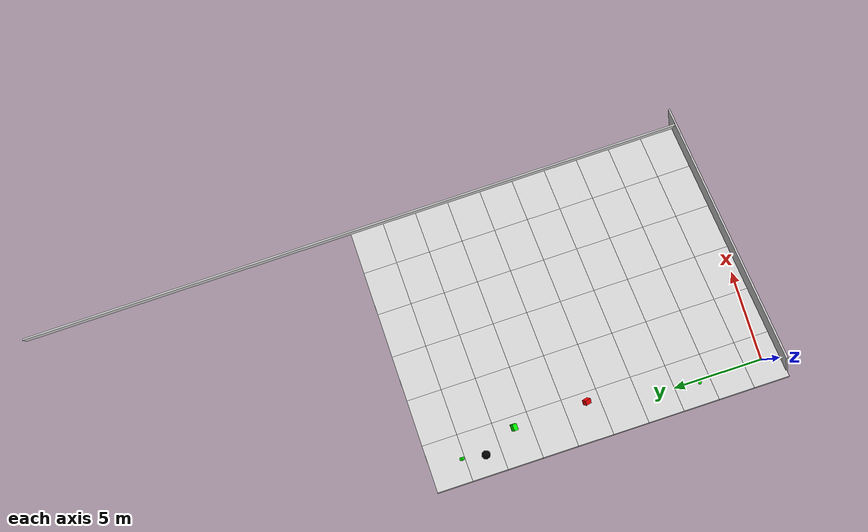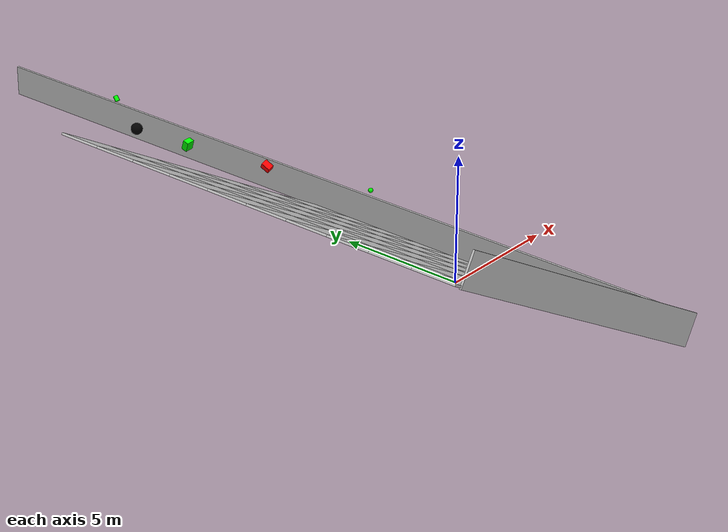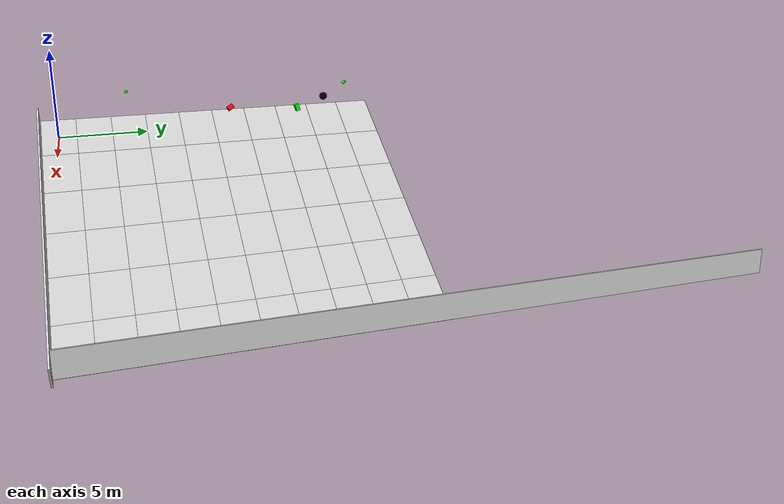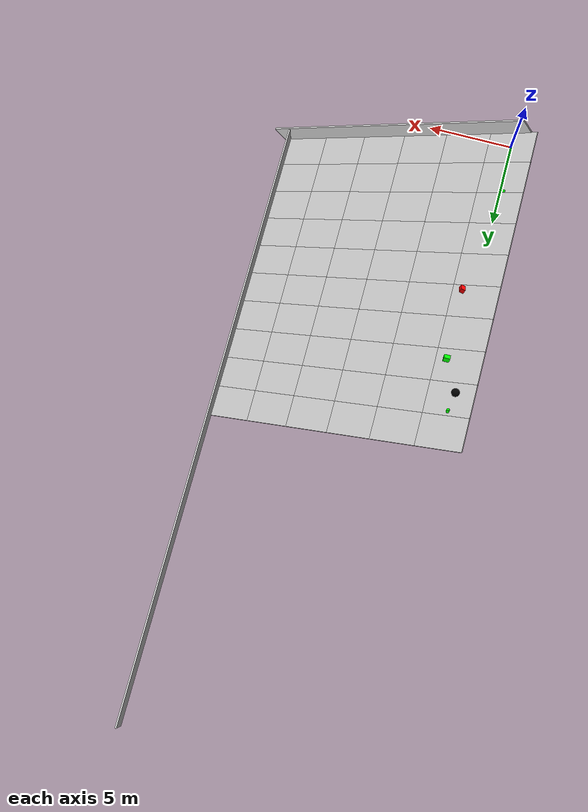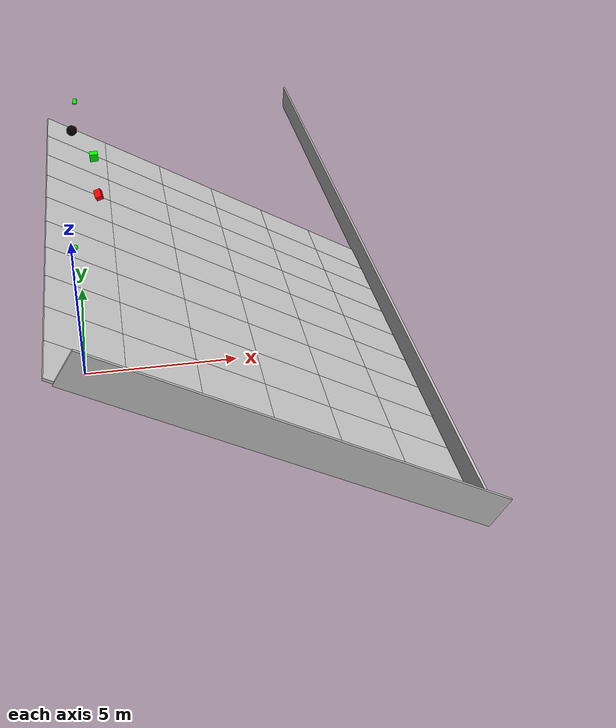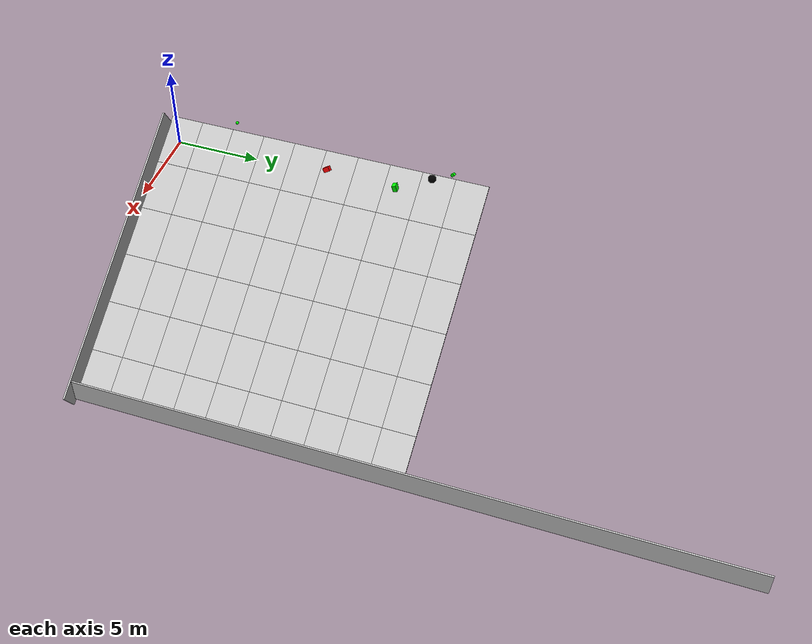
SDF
<sdf version="1.6">
 <world name="default">
  <model name="model_1">
   <pose>-0.038271952556842015
        3.959762532615608
        2.462529946225647
        1.066721489782598
        1.2828383124867102
        2.5433092710002985</pose>
   <link name="link">
    <inertial>
     <mass>0.011222515870999929</mass>
     <inertia>
      <ixx>3.567959466566401e-05</ixx>
      <iyy>3.567959466566401e-05</iyy>
      <izz>3.567959466566401e-05</izz>
      <ixy>0.0</ixy>
      <ixz>0.0</ixz>
      <iyz>0.0</iyz>
     </inertia>
    </inertial>
    <collision name="collision">
     <geometry><sphere><radius>0.08915277099144181</radius></sphere></geometry>
    </collision>
    <visual name="visual">
     <geometry><sphere><radius>0.08915277099144181</radius></sphere></geometry>
     <material>
      <diffuse>0
              1
              0
              1</diffuse>
      <specular>0
              1
              0
              1</specular>
      <ambient>1
              1
              1
              1</ambient>
     </material>
    </visual>
   </link>
  </model>
  <model name="model_2">
   <pose>-0.12676382181791312
        15.906205672275762
        1.4659229326791146
        2.706385247141538
        1.0482228673604856
        1.304410164367507</pose>
   <link name="link">
    <inertial>
     <mass>0.122455597367965</mass>
     <inertia>
      <ixx>0.0027519343341353376</ixx>
      <iyy>0.0027519343341353376</iyy>
      <izz>0.0027519343341353376</izz>
      <ixy>0.0</ixy>
      <ixz>0.0</ixz>
      <iyz>0.0</iyz>
     </inertia>
    </inertial>
    <collision name="collision">
     <geometry><sphere><radius>0.23702803548759238</radius></sphere></geometry>
    </collision>
    <visual name="visual">
     <geometry><sphere><radius>0.23702803548759238</radius></sphere></geometry>
     <material>
      <diffuse>0
              0
              0
              1</diffuse>
      <specular>0
              0
              0
              1</specular>
      <ambient>0
              0
              1
              1</ambient>
     </material>
    </visual>
   </link>
  </model>
  <model name="model_5">
   <pose>0.1006548400403221
        17.21287808213079
        2.3141409388962617
        3.0284407605036097
        0.7237282130935071
        1.246580234347236</pose>
   <link name="link">
    <inertial>
     <mass>0.019406978406939474</mass>
     <inertia>
      <ixx>0.00011904788369320333</ixx>
      <iyy>0.00011904788369320333</iyy>
      <izz>8.277062895178454e-05</izz>
      <ixy>0.0</ixy>
      <ixz>0.0</ixz>
      <iyz>0.0</iyz>
     </inertia>
    </inertial>
    <collision name="collision">
     <geometry>
      <cylinder><radius>0.09235792437736104</radius><length>0.21913792172734095</length></cylinder>
     </geometry>
    </collision>
    <visual name="visual">
     <geometry>
      <cylinder><radius>0.09235792437736104</radius><length>0.21913792172734095</length></cylinder>
     </geometry>
     <material>
      <diffuse>0
              1
              0
              1</diffuse>
      <specular>1
              1
              1
              1</specular>
      <ambient>0
              1
              0
              1</ambient>
     </material>
    </visual>
   </link>
  </model>
  <model name="model_8">
   <pose>0.7767954464235158
        13.991533947986316
        1.029149445295319
        1.620926287593392
        2.842830134354316
        1.616057043043007</pose>
   <link name="link">
    <inertial>
     <mass>0.08261027453007969</mass>
     <inertia>
      <ixx>0.002014914596640963</ixx>
      <iyy>0.0013454234872722533</iyy>
      <izz>0.0014988091572397978</izz>
      <ixy>0.0</ixy>
      <ixz>0.0</ixz>
      <iyz>0.0</iyz>
     </inertia>
    </inertial>
    <collision name="collision">
     <geometry>
      <box><size>0.24542519845996835
           0.39684261621582184
           0.36769987911048974</size></box>
     </geometry>
    </collision>
    <visual name="visual">
     <geometry>
      <box><size>0.24542519845996835
           0.39684261621582184
           0.36769987911048974</size></box>
     </geometry>
     <material>
      <diffuse>0
              1
              0
              1</diffuse>
      <specular>0
              0
              0
              1</specular>
      <ambient>1
              0
              1
              1</ambient>
     </material>
    </visual>
   </link>
  </model>
  <model name="model_10">
   <pose>0.8658046214067792
        9.868357803020617
        1.3044535573637759
        0.9412412023747528
        0.9010714836349217
        0.9969421995681935</pose>
   <link name="link">
    <inertial>
     <mass>0.007915386322146037</mass>
     <inertia>
      <ixx>0.00013824236259011782</ixx>
      <iyy>9.739401543267154e-05</iyy>
      <izz>0.00013895046738993761</izz>
      <ixy>0.0</ixy>
      <ixz>0.0</ixz>
      <iyz>0.0</iyz>
     </inertia>
    </inertial>
    <collision name="collision">
     <geometry>
      <box><size>0.27269599772218023
           0.3691755912948558
           0.2707205122544274</size></box>
     </geometry>
    </collision>
    <visual name="visual">
     <geometry>
      <box><size>0.27269599772218023
           0.3691755912948558
           0.2707205122544274</size></box>
     </geometry>
     <material>
      <diffuse>1
              0
              0
              1</diffuse>
      <specular>0
              0
              1
              1</specular>
      <ambient>0
              0
              1
              1</ambient>
     </material>
    </visual>
   </link>
  </model>
  <model name="block_0_0">
   <static>true</static>
   <pose>0.0 0.0 -0.0 0 0.5235987755982988 0</pose>
   <link name="link">
    <collision name="collision">
     <geometry><box><size>3.0
           2.0
           0.1</size></box></geometry>
    </collision>
    <visual name="visual">
     <geometry><box><size>3.0
           2.0
           0.1</size></box></geometry>
     <material>
      <ambient>0.8 0.8 0.8 1</ambient>
      <diffuse>0.8 0.8 0.8 1</diffuse>
      <specular>0.8 0.8 0.8 1</specular>
     </material>
    </visual>
   </link>
  </model>
  <model name="block_0_1">
   <static>true</static>
   <pose>0.0 2.0 -0.0 0 0.5235987755982988 0</pose>
   <link name="link">
    <collision name="collision">
     <geometry><box><size>3.0
           2.0
           0.1</size></box></geometry>
    </collision>
    <visual name="visual">
     <geometry><box><size>3.0
           2.0
           0.1</size></box></geometry>
     <material>
      <ambient>0.8 0.8 0.8 1</ambient>
      <diffuse>0.8 0.8 0.8 1</diffuse>
      <specular>0.8 0.8 0.8 1</specular>
     </material>
    </visual>
   </link>
  </model>
  <model name="block_0_2">
   <static>true</static>
   <pose>0.0 4.0 -0.0 0 0.5235987755982988 0</pose>
   <link name="link">
    <collision name="collision">
     <geometry><box><size>3.0
           2.0
           0.1</size></box></geometry>
    </collision>
    <visual name="visual">
     <geometry><box><size>3.0
           2.0
           0.1</size></box></geometry>
     <material>
      <ambient>0.8 0.8 0.8 1</ambient>
      <diffuse>0.8 0.8 0.8 1</diffuse>
      <specular>0.8 0.8 0.8 1</specular>
     </material>
    </visual>
   </link>
  </model>
  <model name="block_0_3">
   <static>true</static>
   <pose>0.0 6.0 -0.0 0 0.5235987755982988 0</pose>
   <link name="link">
    <collision name="collision">
     <geometry><box><size>3.0
           2.0
           0.1</size></box></geometry>
    </collision>
    <visual name="visual">
     <geometry><box><size>3.0
           2.0
           0.1</size></box></geometry>
     <material>
      <ambient>0.8 0.8 0.8 1</ambient>
      <diffuse>0.8 0.8 0.8 1</diffuse>
      <specular>0.8 0.8 0.8 1</specular>
     </material>
    </visual>
   </link>
  </model>
  <model name="block_0_4">
   <static>true</static>
   <pose>0.0 8.0 -0.0 0 0.5235987755982988 0</pose>
   <link name="link">
    <collision name="collision">
     <geometry><box><size>3.0
           2.0
           0.1</size></box></geometry>
    </collision>
    <visual name="visual">
     <geometry><box><size>3.0
           2.0
           0.1</size></box></geometry>
     <material>
      <ambient>0.8 0.8 0.8 1</ambient>
      <diffuse>0.8 0.8 0.8 1</diffuse>
      <specular>0.8 0.8 0.8 1</specular>
     </material>
    </visual>
   </link>
  </model>
  <model name="block_0_5">
   <static>true</static>
   <pose>0.0 10.0 -0.0 0 0.5235987755982988 0</pose>
   <link name="link">
    <collision name="collision">
     <geometry><box><size>3.0
           2.0
           0.1</size></box></geometry>
    </collision>
    <visual name="visual">
     <geometry><box><size>3.0
           2.0
           0.1</size></box></geometry>
     <material>
      <ambient>0.8 0.8 0.8 1</ambient>
      <diffuse>0.8 0.8 0.8 1</diffuse>
      <specular>0.8 0.8 0.8 1</specular>
     </material>
    </visual>
   </link>
  </model>
  <model name="block_0_6">
   <static>true</static>
   <pose>0.0 12.0 -0.0 0 0.5235987755982988 0</pose>
   <link name="link">
    <collision name="collision">
     <geometry><box><size>3.0
           2.0
           0.1</size></box></geometry>
    </collision>
    <visual name="visual">
     <geometry><box><size>3.0
           2.0
           0.1</size></box></geometry>
     <material>
      <ambient>0.8 0.8 0.8 1</ambient>
      <diffuse>0.8 0.8 0.8 1</diffuse>
      <specular>0.8 0.8 0.8 1</specular>
     </material>
    </visual>
   </link>
  </model>
  <model name="block_0_7">
   <static>true</static>
   <pose>0.0 14.0 -0.0 0 0.5235987755982988 0</pose>
   <link name="link">
    <collision name="collision">
     <geometry><box><size>3.0
           2.0
           0.1</size></box></geometry>
    </collision>
    <visual name="visual">
     <geometry><box><size>3.0
           2.0
           0.1</size></box></geometry>
     <material>
      <ambient>0.8 0.8 0.8 1</ambient>
      <diffuse>0.8 0.8 0.8 1</diffuse>
      <specular>0.8 0.8 0.8 1</specular>
     </material>
    </visual>
   </link>
  </model>
  <model name="block_0_8">
   <static>true</static>
   <pose>0.0 16.0 -0.0 0 0.5235987755982988 0</pose>
   <link name="link">
    <collision name="collision">
     <geometry><box><size>3.0
           2.0
           0.1</size></box></geometry>
    </collision>
    <visual name="visual">
     <geometry><box><size>3.0
           2.0
           0.1</size></box></geometry>
     <material>
      <ambient>0.8 0.8 0.8 1</ambient>
      <diffuse>0.8 0.8 0.8 1</diffuse>
      <specular>0.8 0.8 0.8 1</specular>
     </material>
    </visual>
   </link>
  </model>
  <model name="block_0_9">
   <static>true</static>
   <pose>0.0 18.0 -0.0 0 0.5235987755982988 0</pose>
   <link name="link">
    <collision name="collision">
     <geometry><box><size>3.0
           2.0
           0.1</size></box></geometry>
    </collision>
    <visual name="visual">
     <geometry><box><size>3.0
           2.0
           0.1</size></box></geometry>
     <material>
      <ambient>0.8 0.8 0.8 1</ambient>
      <diffuse>0.8 0.8 0.8 1</diffuse>
      <specular>0.8 0.8 0.8 1</specular>
     </material>
    </visual>
   </link>
  </model>
  <model name="block_1_0">
   <static>true</static>
   <pose>2.598076211353316 0.0 -1.4999999999999998 0 0.5235987755982988 0</pose>
   <link name="link">
    <collision name="collision">
     <geometry><box><size>3.0
           2.0
           0.1</size></box></geometry>
    </collision>
    <visual name="visual">
     <geometry><box><size>3.0
           2.0
           0.1</size></box></geometry>
     <material>
      <ambient>0.8 0.8 0.8 1</ambient>
      <diffuse>0.8 0.8 0.8 1</diffuse>
      <specular>0.8 0.8 0.8 1</specular>
     </material>
    </visual>
   </link>
  </model>
  <model name="block_1_1">
   <static>true</static>
   <pose>2.598076211353316 2.0 -1.4999999999999998 0 0.5235987755982988 0</pose>
   <link name="link">
    <collision name="collision">
     <geometry><box><size>3.0
           2.0
           0.1</size></box></geometry>
    </collision>
    <visual name="visual">
     <geometry><box><size>3.0
           2.0
           0.1</size></box></geometry>
     <material>
      <ambient>0.8 0.8 0.8 1</ambient>
      <diffuse>0.8 0.8 0.8 1</diffuse>
      <specular>0.8 0.8 0.8 1</specular>
     </material>
    </visual>
   </link>
  </model>
  <model name="block_1_2">
   <static>true</static>
   <pose>2.598076211353316 4.0 -1.4999999999999998 0 0.5235987755982988 0</pose>
   <link name="link">
    <collision name="collision">
     <geometry><box><size>3.0
           2.0
           0.1</size></box></geometry>
    </collision>
    <visual name="visual">
     <geometry><box><size>3.0
           2.0
           0.1</size></box></geometry>
     <material>
      <ambient>0.8 0.8 0.8 1</ambient>
      <diffuse>0.8 0.8 0.8 1</diffuse>
      <specular>0.8 0.8 0.8 1</specular>
     </material>
    </visual>
   </link>
  </model>
  <model name="block_1_3">
   <static>true</static>
   <pose>2.598076211353316 6.0 -1.4999999999999998 0 0.5235987755982988 0</pose>
   <link name="link">
    <collision name="collision">
     <geometry><box><size>3.0
           2.0
           0.1</size></box></geometry>
    </collision>
    <visual name="visual">
     <geometry><box><size>3.0
           2.0
           0.1</size></box></geometry>
     <material>
      <ambient>0.8 0.8 0.8 1</ambient>
      <diffuse>0.8 0.8 0.8 1</diffuse>
      <specular>0.8 0.8 0.8 1</specular>
     </material>
    </visual>
   </link>
  </model>
  <model name="block_1_4">
   <static>true</static>
   <pose>2.598076211353316 8.0 -1.4999999999999998 0 0.5235987755982988 0</pose>
   <link name="link">
    <collision name="collision">
     <geometry><box><size>3.0
           2.0
           0.1</size></box></geometry>
    </collision>
    <visual name="visual">
     <geometry><box><size>3.0
           2.0
           0.1</size></box></geometry>
     <material>
      <ambient>0.8 0.8 0.8 1</ambient>
      <diffuse>0.8 0.8 0.8 1</diffuse>
      <specular>0.8 0.8 0.8 1</specular>
     </material>
    </visual>
   </link>
  </model>
  <model name="block_1_5">
   <static>true</static>
   <pose>2.598076211353316 10.0 -1.4999999999999998 0 0.5235987755982988 0</pose>
   <link name="link">
    <collision name="collision">
     <geometry><box><size>3.0
           2.0
           0.1</size></box></geometry>
    </collision>
    <visual name="visual">
     <geometry><box><size>3.0
           2.0
           0.1</size></box></geometry>
     <material>
      <ambient>0.8 0.8 0.8 1</ambient>
      <diffuse>0.8 0.8 0.8 1</diffuse>
      <specular>0.8 0.8 0.8 1</specular>
     </material>
    </visual>
   </link>
  </model>
  <model name="block_1_6">
   <static>true</static>
   <pose>2.598076211353316 12.0 -1.4999999999999998 0 0.5235987755982988 0</pose>
   <link name="link">
    <collision name="collision">
     <geometry><box><size>3.0
           2.0
           0.1</size></box></geometry>
    </collision>
    <visual name="visual">
     <geometry><box><size>3.0
           2.0
           0.1</size></box></geometry>
     <material>
      <ambient>0.8 0.8 0.8 1</ambient>
      <diffuse>0.8 0.8 0.8 1</diffuse>
      <specular>0.8 0.8 0.8 1</specular>
     </material>
    </visual>
   </link>
  </model>
  <model name="block_1_7">
   <static>true</static>
   <pose>2.598076211353316 14.0 -1.4999999999999998 0 0.5235987755982988 0</pose>
   <link name="link">
    <collision name="collision">
     <geometry><box><size>3.0
           2.0
           0.1</size></box></geometry>
    </collision>
    <visual name="visual">
     <geometry><box><size>3.0
           2.0
           0.1</size></box></geometry>
     <material>
      <ambient>0.8 0.8 0.8 1</ambient>
      <diffuse>0.8 0.8 0.8 1</diffuse>
      <specular>0.8 0.8 0.8 1</specular>
     </material>
    </visual>
   </link>
  </model>
  <model name="block_1_8">
   <static>true</static>
   <pose>2.598076211353316 16.0 -1.4999999999999998 0 0.5235987755982988 0</pose>
   <link name="link">
    <collision name="collision">
     <geometry><box><size>3.0
           2.0
           0.1</size></box></geometry>
    </collision>
    <visual name="visual">
     <geometry><box><size>3.0
           2.0
           0.1</size></box></geometry>
     <material>
      <ambient>0.8 0.8 0.8 1</ambient>
      <diffuse>0.8 0.8 0.8 1</diffuse>
      <specular>0.8 0.8 0.8 1</specular>
     </material>
    </visual>
   </link>
  </model>
  <model name="block_1_9">
   <static>true</static>
   <pose>2.598076211353316 18.0 -1.4999999999999998 0 0.5235987755982988 0</pose>
   <link name="link">
    <collision name="collision">
     <geometry><box><size>3.0
           2.0
           0.1</size></box></geometry>
    </collision>
    <visual name="visual">
     <geometry><box><size>3.0
           2.0
           0.1</size></box></geometry>
     <material>
      <ambient>0.8 0.8 0.8 1</ambient>
      <diffuse>0.8 0.8 0.8 1</diffuse>
      <specular>0.8 0.8 0.8 1</specular>
     </material>
    </visual>
   </link>
  </model>
  <model name="block_2_0">
   <static>true</static>
   <pose>5.196152422706632 0.0 -2.9999999999999996 0 0.5235987755982988 0</pose>
   <link name="link">
    <collision name="collision">
     <geometry><box><size>3.0
           2.0
           0.1</size></box></geometry>
    </collision>
    <visual name="visual">
     <geometry><box><size>3.0
           2.0
           0.1</size></box></geometry>
     <material>
      <ambient>0.8 0.8 0.8 1</ambient>
      <diffuse>0.8 0.8 0.8 1</diffuse>
      <specular>0.8 0.8 0.8 1</specular>
     </material>
    </visual>
   </link>
  </model>
  <model name="block_2_1">
   <static>true</static>
   <pose>5.196152422706632 2.0 -2.9999999999999996 0 0.5235987755982988 0</pose>
   <link name="link">
    <collision name="collision">
     <geometry><box><size>3.0
           2.0
           0.1</size></box></geometry>
    </collision>
    <visual name="visual">
     <geometry><box><size>3.0
           2.0
           0.1</size></box></geometry>
     <material>
      <ambient>0.8 0.8 0.8 1</ambient>
      <diffuse>0.8 0.8 0.8 1</diffuse>
      <specular>0.8 0.8 0.8 1</specular>
     </material>
    </visual>
   </link>
  </model>
  <model name="block_2_2">
   <static>true</static>
   <pose>5.196152422706632 4.0 -2.9999999999999996 0 0.5235987755982988 0</pose>
   <link name="link">
    <collision name="collision">
     <geometry><box><size>3.0
           2.0
           0.1</size></box></geometry>
    </collision>
    <visual name="visual">
     <geometry><box><size>3.0
           2.0
           0.1</size></box></geometry>
     <material>
      <ambient>0.8 0.8 0.8 1</ambient>
      <diffuse>0.8 0.8 0.8 1</diffuse>
      <specular>0.8 0.8 0.8 1</specular>
     </material>
    </visual>
   </link>
  </model>
  <model name="block_2_3">
   <static>true</static>
   <pose>5.196152422706632 6.0 -2.9999999999999996 0 0.5235987755982988 0</pose>
   <link name="link">
    <collision name="collision">
     <geometry><box><size>3.0
           2.0
           0.1</size></box></geometry>
    </collision>
    <visual name="visual">
     <geometry><box><size>3.0
           2.0
           0.1</size></box></geometry>
     <material>
      <ambient>0.8 0.8 0.8 1</ambient>
      <diffuse>0.8 0.8 0.8 1</diffuse>
      <specular>0.8 0.8 0.8 1</specular>
     </material>
    </visual>
   </link>
  </model>
  <model name="block_2_4">
   <static>true</static>
   <pose>5.196152422706632 8.0 -2.9999999999999996 0 0.5235987755982988 0</pose>
   <link name="link">
    <collision name="collision">
     <geometry><box><size>3.0
           2.0
           0.1</size></box></geometry>
    </collision>
    <visual name="visual">
     <geometry><box><size>3.0
           2.0
           0.1</size></box></geometry>
     <material>
      <ambient>0.8 0.8 0.8 1</ambient>
      <diffuse>0.8 0.8 0.8 1</diffuse>
      <specular>0.8 0.8 0.8 1</specular>
     </material>
    </visual>
   </link>
  </model>
  <model name="block_2_5">
   <static>true</static>
   <pose>5.196152422706632 10.0 -2.9999999999999996 0 0.5235987755982988 0</pose>
   <link name="link">
    <collision name="collision">
     <geometry><box><size>3.0
           2.0
           0.1</size></box></geometry>
    </collision>
    <visual name="visual">
     <geometry><box><size>3.0
           2.0
           0.1</size></box></geometry>
     <material>
      <ambient>0.8 0.8 0.8 1</ambient>
      <diffuse>0.8 0.8 0.8 1</diffuse>
      <specular>0.8 0.8 0.8 1</specular>
     </material>
    </visual>
   </link>
  </model>
  <model name="block_2_6">
   <static>true</static>
   <pose>5.196152422706632 12.0 -2.9999999999999996 0 0.5235987755982988 0</pose>
   <link name="link">
    <collision name="collision">
     <geometry><box><size>3.0
           2.0
           0.1</size></box></geometry>
    </collision>
    <visual name="visual">
     <geometry><box><size>3.0
           2.0
           0.1</size></box></geometry>
     <material>
      <ambient>0.8 0.8 0.8 1</ambient>
      <diffuse>0.8 0.8 0.8 1</diffuse>
      <specular>0.8 0.8 0.8 1</specular>
     </material>
    </visual>
   </link>
  </model>
  <model name="block_2_7">
   <static>true</static>
   <pose>5.196152422706632 14.0 -2.9999999999999996 0 0.5235987755982988 0</pose>
   <link name="link">
    <collision name="collision">
     <geometry><box><size>3.0
           2.0
           0.1</size></box></geometry>
    </collision>
    <visual name="visual">
     <geometry><box><size>3.0
           2.0
           0.1</size></box></geometry>
     <material>
      <ambient>0.8 0.8 0.8 1</ambient>
      <diffuse>0.8 0.8 0.8 1</diffuse>
      <specular>0.8 0.8 0.8 1</specular>
     </material>
    </visual>
   </link>
  </model>
  <model name="block_2_8">
   <static>true</static>
   <pose>5.196152422706632 16.0 -2.9999999999999996 0 0.5235987755982988 0</pose>
   <link name="link">
    <collision name="collision">
     <geometry><box><size>3.0
           2.0
           0.1</size></box></geometry>
    </collision>
    <visual name="visual">
     <geometry><box><size>3.0
           2.0
           0.1</size></box></geometry>
     <material>
      <ambient>0.8 0.8 0.8 1</ambient>
      <diffuse>0.8 0.8 0.8 1</diffuse>
      <specular>0.8 0.8 0.8 1</specular>
     </material>
    </visual>
   </link>
  </model>
  <model name="block_2_9">
   <static>true</static>
   <pose>5.196152422706632 18.0 -2.9999999999999996 0 0.5235987755982988 0</pose>
   <link name="link">
    <collision name="collision">
     <geometry><box><size>3.0
           2.0
           0.1</size></box></geometry>
    </collision>
    <visual name="visual">
     <geometry><box><size>3.0
           2.0
           0.1</size></box></geometry>
     <material>
      <ambient>0.8 0.8 0.8 1</ambient>
      <diffuse>0.8 0.8 0.8 1</diffuse>
      <specular>0.8 0.8 0.8 1</specular>
     </material>
    </visual>
   </link>
  </model>
  <model name="block_3_0">
   <static>true</static>
   <pose>7.794228634059948 0.0 -4.499999999999999 0 0.5235987755982988 0</pose>
   <link name="link">
    <collision name="collision">
     <geometry><box><size>3.0
           2.0
           0.1</size></box></geometry>
    </collision>
    <visual name="visual">
     <geometry><box><size>3.0
           2.0
           0.1</size></box></geometry>
     <material>
      <ambient>0.8 0.8 0.8 1</ambient>
      <diffuse>0.8 0.8 0.8 1</diffuse>
      <specular>0.8 0.8 0.8 1</specular>
     </material>
    </visual>
   </link>
  </model>
  <model name="block_3_1">
   <static>true</static>
   <pose>7.794228634059948 2.0 -4.499999999999999 0 0.5235987755982988 0</pose>
   <link name="link">
    <collision name="collision">
     <geometry><box><size>3.0
           2.0
           0.1</size></box></geometry>
    </collision>
    <visual name="visual">
     <geometry><box><size>3.0
           2.0
           0.1</size></box></geometry>
     <material>
      <ambient>0.8 0.8 0.8 1</ambient>
      <diffuse>0.8 0.8 0.8 1</diffuse>
      <specular>0.8 0.8 0.8 1</specular>
     </material>
    </visual>
   </link>
  </model>
  <model name="block_3_2">
   <static>true</static>
   <pose>7.794228634059948 4.0 -4.499999999999999 0 0.5235987755982988 0</pose>
   <link name="link">
    <collision name="collision">
     <geometry><box><size>3.0
           2.0
           0.1</size></box></geometry>
    </collision>
    <visual name="visual">
     <geometry><box><size>3.0
           2.0
           0.1</size></box></geometry>
     <material>
      <ambient>0.8 0.8 0.8 1</ambient>
      <diffuse>0.8 0.8 0.8 1</diffuse>
      <specular>0.8 0.8 0.8 1</specular>
     </material>
    </visual>
   </link>
  </model>
  <model name="block_3_3">
   <static>true</static>
   <pose>7.794228634059948 6.0 -4.499999999999999 0 0.5235987755982988 0</pose>
   <link name="link">
    <collision name="collision">
     <geometry><box><size>3.0
           2.0
           0.1</size></box></geometry>
    </collision>
    <visual name="visual">
     <geometry><box><size>3.0
           2.0
           0.1</size></box></geometry>
     <material>
      <ambient>0.8 0.8 0.8 1</ambient>
      <diffuse>0.8 0.8 0.8 1</diffuse>
      <specular>0.8 0.8 0.8 1</specular>
     </material>
    </visual>
   </link>
  </model>
  <model name="block_3_4">
   <static>true</static>
   <pose>7.794228634059948 8.0 -4.499999999999999 0 0.5235987755982988 0</pose>
   <link name="link">
    <collision name="collision">
     <geometry><box><size>3.0
           2.0
           0.1</size></box></geometry>
    </collision>
    <visual name="visual">
     <geometry><box><size>3.0
           2.0
           0.1</size></box></geometry>
     <material>
      <ambient>0.8 0.8 0.8 1</ambient>
      <diffuse>0.8 0.8 0.8 1</diffuse>
      <specular>0.8 0.8 0.8 1</specular>
     </material>
    </visual>
   </link>
  </model>
  <model name="block_3_5">
   <static>true</static>
   <pose>7.794228634059948 10.0 -4.499999999999999 0 0.5235987755982988 0</pose>
   <link name="link">
    <collision name="collision">
     <geometry><box><size>3.0
           2.0
           0.1</size></box></geometry>
    </collision>
    <visual name="visual">
     <geometry><box><size>3.0
           2.0
           0.1</size></box></geometry>
     <material>
      <ambient>0.8 0.8 0.8 1</ambient>
      <diffuse>0.8 0.8 0.8 1</diffuse>
      <specular>0.8 0.8 0.8 1</specular>
     </material>
    </visual>
   </link>
  </model>
  <model name="block_3_6">
   <static>true</static>
   <pose>7.794228634059948 12.0 -4.499999999999999 0 0.5235987755982988 0</pose>
   <link name="link">
    <collision name="collision">
     <geometry><box><size>3.0
           2.0
           0.1</size></box></geometry>
    </collision>
    <visual name="visual">
     <geometry><box><size>3.0
           2.0
           0.1</size></box></geometry>
     <material>
      <ambient>0.8 0.8 0.8 1</ambient>
      <diffuse>0.8 0.8 0.8 1</diffuse>
      <specular>0.8 0.8 0.8 1</specular>
     </material>
    </visual>
   </link>
  </model>
  <model name="block_3_7">
   <static>true</static>
   <pose>7.794228634059948 14.0 -4.499999999999999 0 0.5235987755982988 0</pose>
   <link name="link">
    <collision name="collision">
     <geometry><box><size>3.0
           2.0
           0.1</size></box></geometry>
    </collision>
    <visual name="visual">
     <geometry><box><size>3.0
           2.0
           0.1</size></box></geometry>
     <material>
      <ambient>0.8 0.8 0.8 1</ambient>
      <diffuse>0.8 0.8 0.8 1</diffuse>
      <specular>0.8 0.8 0.8 1</specular>
     </material>
    </visual>
   </link>
  </model>
  <model name="block_3_8">
   <static>true</static>
   <pose>7.794228634059948 16.0 -4.499999999999999 0 0.5235987755982988 0</pose>
   <link name="link">
    <collision name="collision">
     <geometry><box><size>3.0
           2.0
           0.1</size></box></geometry>
    </collision>
    <visual name="visual">
     <geometry><box><size>3.0
           2.0
           0.1</size></box></geometry>
     <material>
      <ambient>0.8 0.8 0.8 1</ambient>
      <diffuse>0.8 0.8 0.8 1</diffuse>
      <specular>0.8 0.8 0.8 1</specular>
     </material>
    </visual>
   </link>
  </model>
  <model name="block_3_9">
   <static>true</static>
   <pose>7.794228634059948 18.0 -4.499999999999999 0 0.5235987755982988 0</pose>
   <link name="link">
    <collision name="collision">
     <geometry><box><size>3.0
           2.0
           0.1</size></box></geometry>
    </collision>
    <visual name="visual">
     <geometry><box><size>3.0
           2.0
           0.1</size></box></geometry>
     <material>
      <ambient>0.8 0.8 0.8 1</ambient>
      <diffuse>0.8 0.8 0.8 1</diffuse>
      <specular>0.8 0.8 0.8 1</specular>
     </material>
    </visual>
   </link>
  </model>
  <model name="block_4_0">
   <static>true</static>
   <pose>10.392304845413264 0.0 -5.999999999999999 0 0.5235987755982988 0</pose>
   <link name="link">
    <collision name="collision">
     <geometry><box><size>3.0
           2.0
           0.1</size></box></geometry>
    </collision>
    <visual name="visual">
     <geometry><box><size>3.0
           2.0
           0.1</size></box></geometry>
     <material>
      <ambient>0.8 0.8 0.8 1</ambient>
      <diffuse>0.8 0.8 0.8 1</diffuse>
      <specular>0.8 0.8 0.8 1</specular>
     </material>
    </visual>
   </link>
  </model>
  <model name="block_4_1">
   <static>true</static>
   <pose>10.392304845413264 2.0 -5.999999999999999 0 0.5235987755982988 0</pose>
   <link name="link">
    <collision name="collision">
     <geometry><box><size>3.0
           2.0
           0.1</size></box></geometry>
    </collision>
    <visual name="visual">
     <geometry><box><size>3.0
           2.0
           0.1</size></box></geometry>
     <material>
      <ambient>0.8 0.8 0.8 1</ambient>
      <diffuse>0.8 0.8 0.8 1</diffuse>
      <specular>0.8 0.8 0.8 1</specular>
     </material>
    </visual>
   </link>
  </model>
  <model name="block_4_2">
   <static>true</static>
   <pose>10.392304845413264 4.0 -5.999999999999999 0 0.5235987755982988 0</pose>
   <link name="link">
    <collision name="collision">
     <geometry><box><size>3.0
           2.0
           0.1</size></box></geometry>
    </collision>
    <visual name="visual">
     <geometry><box><size>3.0
           2.0
           0.1</size></box></geometry>
     <material>
      <ambient>0.8 0.8 0.8 1</ambient>
      <diffuse>0.8 0.8 0.8 1</diffuse>
      <specular>0.8 0.8 0.8 1</specular>
     </material>
    </visual>
   </link>
  </model>
  <model name="block_4_3">
   <static>true</static>
   <pose>10.392304845413264 6.0 -5.999999999999999 0 0.5235987755982988 0</pose>
   <link name="link">
    <collision name="collision">
     <geometry><box><size>3.0
           2.0
           0.1</size></box></geometry>
    </collision>
    <visual name="visual">
     <geometry><box><size>3.0
           2.0
           0.1</size></box></geometry>
     <material>
      <ambient>0.8 0.8 0.8 1</ambient>
      <diffuse>0.8 0.8 0.8 1</diffuse>
      <specular>0.8 0.8 0.8 1</specular>
     </material>
    </visual>
   </link>
  </model>
  <model name="block_4_4">
   <static>true</static>
   <pose>10.392304845413264 8.0 -5.999999999999999 0 0.5235987755982988 0</pose>
   <link name="link">
    <collision name="collision">
     <geometry><box><size>3.0
           2.0
           0.1</size></box></geometry>
    </collision>
    <visual name="visual">
     <geometry><box><size>3.0
           2.0
           0.1</size></box></geometry>
     <material>
      <ambient>0.8 0.8 0.8 1</ambient>
      <diffuse>0.8 0.8 0.8 1</diffuse>
      <specular>0.8 0.8 0.8 1</specular>
     </material>
    </visual>
   </link>
  </model>
  <model name="block_4_5">
   <static>true</static>
   <pose>10.392304845413264 10.0 -5.999999999999999 0 0.5235987755982988 0</pose>
   <link name="link">
    <collision name="collision">
     <geometry><box><size>3.0
           2.0
           0.1</size></box></geometry>
    </collision>
    <visual name="visual">
     <geometry><box><size>3.0
           2.0
           0.1</size></box></geometry>
     <material>
      <ambient>0.8 0.8 0.8 1</ambient>
      <diffuse>0.8 0.8 0.8 1</diffuse>
      <specular>0.8 0.8 0.8 1</specular>
     </material>
    </visual>
   </link>
  </model>
  <model name="block_4_6">
   <static>true</static>
   <pose>10.392304845413264 12.0 -5.999999999999999 0 0.5235987755982988 0</pose>
   <link name="link">
    <collision name="collision">
     <geometry><box><size>3.0
           2.0
           0.1</size></box></geometry>
    </collision>
    <visual name="visual">
     <geometry><box><size>3.0
           2.0
           0.1</size></box></geometry>
     <material>
      <ambient>0.8 0.8 0.8 1</ambient>
      <diffuse>0.8 0.8 0.8 1</diffuse>
      <specular>0.8 0.8 0.8 1</specular>
     </material>
    </visual>
   </link>
  </model>
  <model name="block_4_7">
   <static>true</static>
   <pose>10.392304845413264 14.0 -5.999999999999999 0 0.5235987755982988 0</pose>
   <link name="link">
    <collision name="collision">
     <geometry><box><size>3.0
           2.0
           0.1</size></box></geometry>
    </collision>
    <visual name="visual">
     <geometry><box><size>3.0
           2.0
           0.1</size></box></geometry>
     <material>
      <ambient>0.8 0.8 0.8 1</ambient>
      <diffuse>0.8 0.8 0.8 1</diffuse>
      <specular>0.8 0.8 0.8 1</specular>
     </material>
    </visual>
   </link>
  </model>
  <model name="block_4_8">
   <static>true</static>
   <pose>10.392304845413264 16.0 -5.999999999999999 0 0.5235987755982988 0</pose>
   <link name="link">
    <collision name="collision">
     <geometry><box><size>3.0
           2.0
           0.1</size></box></geometry>
    </collision>
    <visual name="visual">
     <geometry><box><size>3.0
           2.0
           0.1</size></box></geometry>
     <material>
      <ambient>0.8 0.8 0.8 1</ambient>
      <diffuse>0.8 0.8 0.8 1</diffuse>
      <specular>0.8 0.8 0.8 1</specular>
     </material>
    </visual>
   </link>
  </model>
  <model name="block_4_9">
   <static>true</static>
   <pose>10.392304845413264 18.0 -5.999999999999999 0 0.5235987755982988 0</pose>
   <link name="link">
    <collision name="collision">
     <geometry><box><size>3.0
           2.0
           0.1</size></box></geometry>
    </collision>
    <visual name="visual">
     <geometry><box><size>3.0
           2.0
           0.1</size></box></geometry>
     <material>
      <ambient>0.8 0.8 0.8 1</ambient>
      <diffuse>0.8 0.8 0.8 1</diffuse>
      <specular>0.8 0.8 0.8 1</specular>
     </material>
    </visual>
   </link>
  </model>
  <model name="block_5_0">
   <static>true</static>
   <pose>12.99038105676658 0.0 -7.499999999999999 0 0.5235987755982988 0</pose>
   <link name="link">
    <collision name="collision">
     <geometry><box><size>3.0
           2.0
           0.1</size></box></geometry>
    </collision>
    <visual name="visual">
     <geometry><box><size>3.0
           2.0
           0.1</size></box></geometry>
     <material>
      <ambient>0.8 0.8 0.8 1</ambient>
      <diffuse>0.8 0.8 0.8 1</diffuse>
      <specular>0.8 0.8 0.8 1</specular>
     </material>
    </visual>
   </link>
  </model>
  <model name="block_5_1">
   <static>true</static>
   <pose>12.99038105676658 2.0 -7.499999999999999 0 0.5235987755982988 0</pose>
   <link name="link">
    <collision name="collision">
     <geometry><box><size>3.0
           2.0
           0.1</size></box></geometry>
    </collision>
    <visual name="visual">
     <geometry><box><size>3.0
           2.0
           0.1</size></box></geometry>
     <material>
      <ambient>0.8 0.8 0.8 1</ambient>
      <diffuse>0.8 0.8 0.8 1</diffuse>
      <specular>0.8 0.8 0.8 1</specular>
     </material>
    </visual>
   </link>
  </model>
  <model name="block_5_2">
   <static>true</static>
   <pose>12.99038105676658 4.0 -7.499999999999999 0 0.5235987755982988 0</pose>
   <link name="link">
    <collision name="collision">
     <geometry><box><size>3.0
           2.0
           0.1</size></box></geometry>
    </collision>
    <visual name="visual">
     <geometry><box><size>3.0
           2.0
           0.1</size></box></geometry>
     <material>
      <ambient>0.8 0.8 0.8 1</ambient>
      <diffuse>0.8 0.8 0.8 1</diffuse>
      <specular>0.8 0.8 0.8 1</specular>
     </material>
    </visual>
   </link>
  </model>
  <model name="block_5_3">
   <static>true</static>
   <pose>12.99038105676658 6.0 -7.499999999999999 0 0.5235987755982988 0</pose>
   <link name="link">
    <collision name="collision">
     <geometry><box><size>3.0
           2.0
           0.1</size></box></geometry>
    </collision>
    <visual name="visual">
     <geometry><box><size>3.0
           2.0
           0.1</size></box></geometry>
     <material>
      <ambient>0.8 0.8 0.8 1</ambient>
      <diffuse>0.8 0.8 0.8 1</diffuse>
      <specular>0.8 0.8 0.8 1</specular>
     </material>
    </visual>
   </link>
  </model>
  <model name="block_5_4">
   <static>true</static>
   <pose>12.99038105676658 8.0 -7.499999999999999 0 0.5235987755982988 0</pose>
   <link name="link">
    <collision name="collision">
     <geometry><box><size>3.0
           2.0
           0.1</size></box></geometry>
    </collision>
    <visual name="visual">
     <geometry><box><size>3.0
           2.0
           0.1</size></box></geometry>
     <material>
      <ambient>0.8 0.8 0.8 1</ambient>
      <diffuse>0.8 0.8 0.8 1</diffuse>
      <specular>0.8 0.8 0.8 1</specular>
     </material>
    </visual>
   </link>
  </model>
  <model name="block_5_5">
   <static>true</static>
   <pose>12.99038105676658 10.0 -7.499999999999999 0 0.5235987755982988 0</pose>
   <link name="link">
    <collision name="collision">
     <geometry><box><size>3.0
           2.0
           0.1</size></box></geometry>
    </collision>
    <visual name="visual">
     <geometry><box><size>3.0
           2.0
           0.1</size></box></geometry>
     <material>
      <ambient>0.8 0.8 0.8 1</ambient>
      <diffuse>0.8 0.8 0.8 1</diffuse>
      <specular>0.8 0.8 0.8 1</specular>
     </material>
    </visual>
   </link>
  </model>
  <model name="block_5_6">
   <static>true</static>
   <pose>12.99038105676658 12.0 -7.499999999999999 0 0.5235987755982988 0</pose>
   <link name="link">
    <collision name="collision">
     <geometry><box><size>3.0
           2.0
           0.1</size></box></geometry>
    </collision>
    <visual name="visual">
     <geometry><box><size>3.0
           2.0
           0.1</size></box></geometry>
     <material>
      <ambient>0.8 0.8 0.8 1</ambient>
      <diffuse>0.8 0.8 0.8 1</diffuse>
      <specular>0.8 0.8 0.8 1</specular>
     </material>
    </visual>
   </link>
  </model>
  <model name="block_5_7">
   <static>true</static>
   <pose>12.99038105676658 14.0 -7.499999999999999 0 0.5235987755982988 0</pose>
   <link name="link">
    <collision name="collision">
     <geometry><box><size>3.0
           2.0
           0.1</size></box></geometry>
    </collision>
    <visual name="visual">
     <geometry><box><size>3.0
           2.0
           0.1</size></box></geometry>
     <material>
      <ambient>0.8 0.8 0.8 1</ambient>
      <diffuse>0.8 0.8 0.8 1</diffuse>
      <specular>0.8 0.8 0.8 1</specular>
     </material>
    </visual>
   </link>
  </model>
  <model name="block_5_8">
   <static>true</static>
   <pose>12.99038105676658 16.0 -7.499999999999999 0 0.5235987755982988 0</pose>
   <link name="link">
    <collision name="collision">
     <geometry><box><size>3.0
           2.0
           0.1</size></box></geometry>
    </collision>
    <visual name="visual">
     <geometry><box><size>3.0
           2.0
           0.1</size></box></geometry>
     <material>
      <ambient>0.8 0.8 0.8 1</ambient>
      <diffuse>0.8 0.8 0.8 1</diffuse>
      <specular>0.8 0.8 0.8 1</specular>
     </material>
    </visual>
   </link>
  </model>
  <model name="block_5_9">
   <static>true</static>
   <pose>12.99038105676658 18.0 -7.499999999999999 0 0.5235987755982988 0</pose>
   <link name="link">
    <collision name="collision">
     <geometry><box><size>3.0
           2.0
           0.1</size></box></geometry>
    </collision>
    <visual name="visual">
     <geometry><box><size>3.0
           2.0
           0.1</size></box></geometry>
     <material>
      <ambient>0.8 0.8 0.8 1</ambient>
      <diffuse>0.8 0.8 0.8 1</diffuse>
      <specular>0.8 0.8 0.8 1</specular>
     </material>
    </visual>
   </link>
  </model>
  <model name="end_block">
   <static>true</static>
   <pose>14.289419162443238
        19.0
        -7.499999999999998
        0
        0
        0</pose>
   <link name="link">
    <collision name="collision">
     <geometry><box><size>0.1
           40.0
           1.4999999999999998</size></box></geometry>
    </collision>
    <visual name="visual">
     <geometry><box><size>0.1
           40.0
           1.4999999999999998</size></box></geometry>
     <material>
      <ambient>0.8 0.8 0.8 1</ambient>
      <diffuse>0.8 0.8 0.8 1</diffuse>
      <specular>0.8 0.8 0.8 1</specular>
     </material>
    </visual>
   </link>
  </model>
  <model name="side_block_A">
   <static>true</static>
   <pose>7.144709581221619
        -1.0
        -3.374999999999999
        0
        0.5235987755982988
        0</pose>
   <link name="link">
    <collision name="collision">
     <geometry><box><size>18.0
           0.1
           1.4999999999999998</size></box></geometry>
    </collision>
    <visual name="visual">
     <geometry><box><size>18.0
           0.1
           1.4999999999999998</size></box></geometry>
     <material>
      <ambient>0.8 0.8 0.8 1</ambient>
      <diffuse>0.8 0.8 0.8 1</diffuse>
      <specular>0.8 0.8 0.8 1</specular>
     </material>
    </visual>
   </link>
  </model>
 </world>
</sdf>
